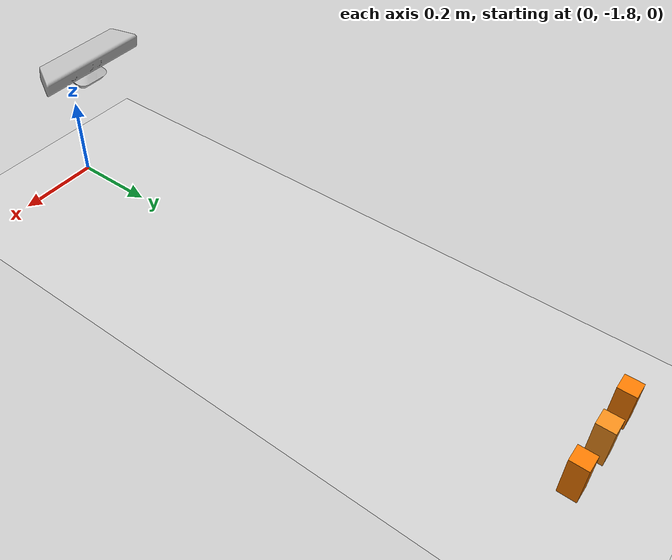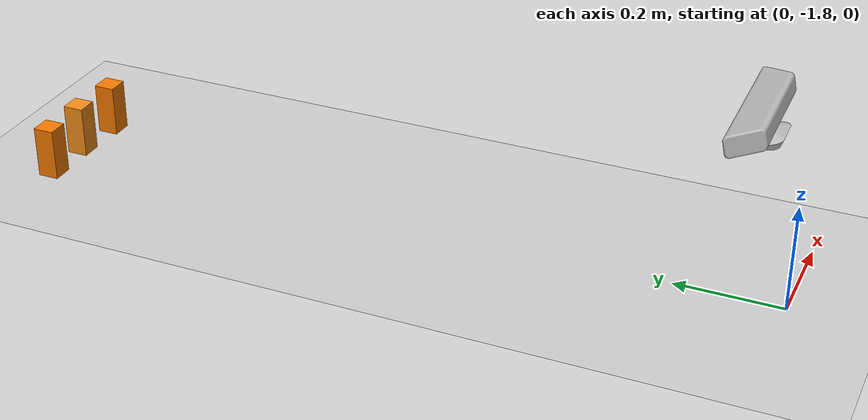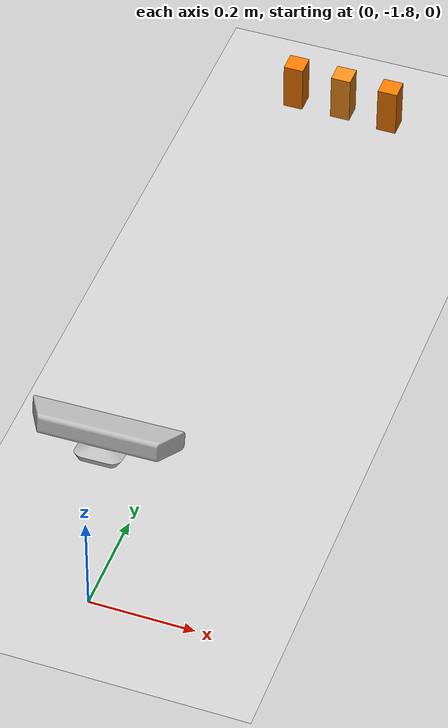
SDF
<sdf version="1.6">
 <world name="default">
  <light name="sun" type="directional">
   <pose>0 0 10 0 -0 0</pose>
   <diffuse>0.8 0.8 0.8 1</diffuse>
   <specular>0.2 0.2 0.2 1</specular>
   <attenuation>
    <range>1000</range>
    <constant>0.9</constant>
    <linear>0.01</linear>
    <quadratic>0.001</quadratic>
   </attenuation>
   <direction>-0.5 0.1 -0.9</direction>
  </light>
  <model name="ground_plane">
   <static>1</static>
   <link name="link">
    <collision name="collision">
     <geometry><plane><normal>0 0 1</normal><size>800 800</size></plane></geometry>
     <surface>
      <contact><collide_bitmask>65535</collide_bitmask></contact>
      <friction><ode><mu>100</mu><mu2>50</mu2></ode></friction>
     </surface>
    </collision>
    <visual name="visual">
     <cast_shadows>0</cast_shadows>
     <geometry><plane><normal>0 0 1</normal><size>100 100</size></plane></geometry>
     <material>
      <script><uri>file://media/materials/scripts/gazebo.material</uri><name>Gazebo/Grey</name></script>
     </material>
    </visual>
   </link>
  </model>
  <gravity>0 0 -9.8</gravity>
  <magnetic_field>6e-06 2.3e-05 -4.2e-05</magnetic_field>
  <atmosphere type="adiabatic"/>
  <physics name="default_physics" default="0" type="ode">
   <max_step_size>0.001</max_step_size>
   <real_time_factor>1</real_time_factor>
   <real_time_update_rate>1000</real_time_update_rate>
  </physics>
  <scene><ambient>0.4 0.4 0.4 1</ambient><background>0.7 0.7 0.7 1</background><shadows>1</shadows></scene>
  <spherical_coordinates>
   <surface_model>EARTH_WGS84</surface_model>
   <latitude_deg>0</latitude_deg>
   <longitude_deg>0</longitude_deg>
   <elevation>0</elevation>
   <heading_deg>0</heading_deg>
  </spherical_coordinates>
  <model name="unit_box_clone">
   <link name="link">
    <inertial>
     <mass>0.187942</mass>
     <inertia>
      <ixx>0.00018166</ixx>
      <ixy>0</ixy>
      <ixz>0</ixz>
      <iyy>0.00018167</iyy>
      <iyz>0</iyz>
      <izz>5.01e-05</izz>
     </inertia>
     <pose>0 0 -0.05 0 -0 0</pose>
    </inertial>
    <visual name="visual">
     <geometry><box><size>0.039996 0.039992 0.099999</size></box></geometry>
     <material>
      <script><name>Gazebo/Grey</name><uri>file://media/materials/scripts/gazebo.material</uri></script>
      <shader type="pixel"><normal_map>__default__</normal_map></shader>
      <ambient>0.961 0.475 0 1</ambient>
      <diffuse>0.961 0.475 0 1</diffuse>
      <specular>0.961 0.475 0 1</specular>
      <emissive>0.961 0.475 0 1</emissive>
     </material>
     <pose>0 0 -0.05 0 -0 0</pose>
    </visual>
    <collision name="collision">
     <pose>0 0 -0.05 0 -0 0</pose>
     <geometry><box><size>0.039996 0.039992 0.099999</size></box></geometry>
     <surface>
      <friction>
       <ode><mu>1</mu><mu2>1</mu2><fdir1>0 0 0</fdir1><slip1>0</slip1><slip2>0</slip2></ode>
       <torsional>
        <coefficient>1</coefficient>
        <patch_radius>0</patch_radius>
        <surface_radius>0</surface_radius>
        <use_patch_radius>1</use_patch_radius>
        <ode><slip>0</slip></ode>
       </torsional>
      </friction>
      <bounce><restitution_coefficient>0</restitution_coefficient><threshold>1e+06</threshold></bounce>
      <contact>
       <collide_without_contact>0</collide_without_contact>
       <collide_without_contact_bitmask>1</collide_without_contact_bitmask>
       <collide_bitmask>1</collide_bitmask>
       <ode>
        <soft_cfm>0</soft_cfm>
        <soft_erp>0.2</soft_erp>
        <kp>1e+13</kp>
        <kd>1</kd>
        <max_vel>0.01</max_vel>
        <min_depth>0</min_depth>
       </ode>
       <bullet>
        <split_impulse>1</split_impulse>
        <split_impulse_penetration_threshold>-0.01</split_impulse_penetration_threshold>
        <soft_cfm>0</soft_cfm>
        <soft_erp>0.2</soft_erp>
        <kp>1e+13</kp>
        <kd>1</kd>
       </bullet>
      </contact>
     </surface>
    </collision>
   </link>
   <static>0</static>
   <pose>0.099999 -0.406482 0.099999 2.7e-05 -1e-06 -2e-05</pose>
  </model>
  <model name="unit_box_clone_0">
   <link name="link">
    <inertial>
     <mass>0.187942</mass>
     <inertia>
      <ixx>0.00018166</ixx>
      <ixy>0</ixy>
      <ixz>0</ixz>
      <iyy>0.00018167</iyy>
      <iyz>0</iyz>
      <izz>5.01e-05</izz>
     </inertia>
     <pose>0 0 -0.05 0 -0 0</pose>
    </inertial>
    <visual name="visual">
     <geometry><box><size>0.039996 0.039992 0.099999</size></box></geometry>
     <material>
      <script><name>Gazebo/Orange</name><uri>file://media/materials/scripts/gazebo.material</uri></script>
      <shader type="pixel"><normal_map>__default__</normal_map></shader>
      <ambient>0.961 0.475 0 1</ambient>
      <diffuse>0.961 0.475 0 1</diffuse>
      <specular>0.961 0.475 0 1</specular>
      <emissive>0.961 0.475 0 1</emissive>
     </material>
     <pose>0 0 -0.05 0 -0 0</pose>
    </visual>
    <collision name="collision">
     <pose>0 0 -0.05 0 -0 0</pose>
     <geometry><box><size>0.039996 0.039992 0.099999</size></box></geometry>
     <surface>
      <friction>
       <ode><mu>1</mu><mu2>1</mu2><fdir1>0 0 0</fdir1><slip1>0</slip1><slip2>0</slip2></ode>
       <torsional>
        <coefficient>1</coefficient>
        <patch_radius>0</patch_radius>
        <surface_radius>0</surface_radius>
        <use_patch_radius>1</use_patch_radius>
        <ode><slip>0</slip></ode>
       </torsional>
      </friction>
      <bounce><restitution_coefficient>0</restitution_coefficient><threshold>1e+06</threshold></bounce>
      <contact>
       <collide_without_contact>0</collide_without_contact>
       <collide_without_contact_bitmask>1</collide_without_contact_bitmask>
       <collide_bitmask>1</collide_bitmask>
       <ode>
        <soft_cfm>0</soft_cfm>
        <soft_erp>0.2</soft_erp>
        <kp>1e+13</kp>
        <kd>1</kd>
        <max_vel>0.01</max_vel>
        <min_depth>0</min_depth>
       </ode>
       <bullet>
        <split_impulse>1</split_impulse>
        <split_impulse_penetration_threshold>-0.01</split_impulse_penetration_threshold>
        <soft_cfm>0</soft_cfm>
        <soft_erp>0.2</soft_erp>
        <kp>1e+13</kp>
        <kd>1</kd>
       </bullet>
      </contact>
     </surface>
    </collision>
   </link>
   <static>0</static>
   <pose>-4e-06 -0.400004 0.1 2.7e-05 6e-06 0.000106</pose>
  </model>
  <model name="unit_box">
   <link name="link">
    <inertial>
     <mass>0.187998</mass>
     <inertia>
      <ixx>0.00018173</ixx>
      <ixy>0</ixy>
      <ixz>0</ixz>
      <iyy>0.00018173</iyy>
      <iyz>0</iyz>
      <izz>5.013e-05</izz>
     </inertia>
     <pose>0 0 -0.05 0 -0 0</pose>
    </inertial>
    <visual name="visual">
     <geometry><box><size>0.04 0.04 0.099999</size></box></geometry>
     <material>
      <script><name>Gazebo/Grey</name><uri>file://media/materials/scripts/gazebo.material</uri></script>
      <shader type="pixel"><normal_map>__default__</normal_map></shader>
      <ambient>0.961 0.475 0 1</ambient>
      <diffuse>0.961 0.475 0 1</diffuse>
      <specular>0.961 0.475 0 1</specular>
      <emissive>0.961 0.475 0 1</emissive>
     </material>
     <pose>0 0 -0.05 0 -0 0</pose>
    </visual>
    <collision name="collision">
     <pose>0 0 -0.05 0 -0 0</pose>
     <geometry><box><size>0.04 0.04 0.099999</size></box></geometry>
     <surface>
      <friction>
       <ode><mu>200</mu><mu2>200</mu2><fdir1>0 0 0</fdir1><slip1>0</slip1><slip2>0</slip2></ode>
       <torsional>
        <coefficient>1</coefficient>
        <patch_radius>0</patch_radius>
        <surface_radius>0</surface_radius>
        <use_patch_radius>1</use_patch_radius>
        <ode><slip>0</slip></ode>
       </torsional>
      </friction>
      <bounce><restitution_coefficient>0</restitution_coefficient><threshold>1e+06</threshold></bounce>
      <contact>
       <collide_without_contact>0</collide_without_contact>
       <collide_without_contact_bitmask>1</collide_without_contact_bitmask>
       <collide_bitmask>1</collide_bitmask>
       <ode>
        <soft_cfm>0</soft_cfm>
        <soft_erp>0.2</soft_erp>
        <kp>1e+13</kp>
        <kd>1</kd>
        <max_vel>0.01</max_vel>
        <min_depth>0</min_depth>
       </ode>
       <bullet>
        <split_impulse>1</split_impulse>
        <split_impulse_penetration_threshold>-0.01</split_impulse_penetration_threshold>
        <soft_cfm>0</soft_cfm>
        <soft_erp>0.2</soft_erp>
        <kp>1e+13</kp>
        <kd>1</kd>
       </bullet>
      </contact>
     </surface>
    </collision>
   </link>
   <static>0</static>
   <pose>-0.099994 -0.399997 0.1 -3e-06 3.6e-05 -0.000147</pose>
  </model>
  <model name="kinect">
   <link name="link">
    <inertial>
     <mass>0.1</mass>
     <inertia><ixx>1</ixx><ixy>0</ixy><ixz>0</ixz><iyy>1</iyy><iyz>0</iyz><izz>1</izz></inertia>
    </inertial>
    <sensor name="camera" type="depth">
     <update_rate>30</update_rate>
     <camera name="__default__">
      <horizontal_fov>1.0472</horizontal_fov>
      <image><width>640</width><height>480</height><format>R8G8B8</format></image>
      <clip><near>0.05</near><far>3</far></clip>
     </camera>
     <plugin name="camera_plugin" filename="libgazebo_ros_openni_kinect.so">
      <baseline>0.2</baseline>
      <alwaysOn>1</alwaysOn>
      <updateRate>0.0</updateRate>
      <cameraName>kinect</cameraName>
      <imageTopicName>/camera/color/image_raw</imageTopicName>
      <cameraInfoTopicName>/camera/color/camera_info</cameraInfoTopicName>
      <depthImageTopicName>/camera/depth/image_raw</depthImageTopicName>
      <depthImageCameraInfoTopicName>/camera/depth/camera_info</depthImageCameraInfoTopicName>
      <pointCloudTopicName>/camera/depth/points</pointCloudTopicName>
      <frameName>kinect_link</frameName>
      <pointCloudCutoff>0.5</pointCloudCutoff>
      <pointCloudCutoffMax>3.0</pointCloudCutoffMax>
      <distortionK1>0</distortionK1>
      <distortionK2>0</distortionK2>
      <distortionK3>0</distortionK3>
      <distortionT1>0</distortionT1>
      <distortionT2>0</distortionT2>
      <CxPrime>0</CxPrime>
      <Cx>0</Cx>
      <Cy>0</Cy>
      <focalLength>0</focalLength>
      <hackBaseline>0</hackBaseline>
     </plugin>
    </sensor>
    <visual name="visual">
     <geometry><mesh><uri>model://kinect/meshes/kinect.dae</uri></mesh></geometry>
     <material><shader type="pixel"/></material>
    </visual>
    <collision name="collision">
     <geometry><box><size>0.073 0.276 0.072</size></box></geometry>
     <surface>
      <friction>
       <ode><mu>1</mu><mu2>1</mu2><fdir1>0 0 0</fdir1><slip1>0</slip1><slip2>0</slip2></ode>
       <torsional>
        <coefficient>1</coefficient>
        <patch_radius>0</patch_radius>
        <surface_radius>0</surface_radius>
        <use_patch_radius>1</use_patch_radius>
        <ode><slip>0</slip></ode>
       </torsional>
      </friction>
      <bounce><restitution_coefficient>0</restitution_coefficient><threshold>1e+06</threshold></bounce>
      <contact>
       <collide_without_contact>0</collide_without_contact>
       <collide_without_contact_bitmask>1</collide_without_contact_bitmask>
       <collide_bitmask>1</collide_bitmask>
       <ode>
        <soft_cfm>0</soft_cfm>
        <soft_erp>0.2</soft_erp>
        <kp>1e+13</kp>
        <kd>1</kd>
        <max_vel>0.01</max_vel>
        <min_depth>0</min_depth>
       </ode>
       <bullet>
        <split_impulse>1</split_impulse>
        <split_impulse_penetration_threshold>-0.01</split_impulse_penetration_threshold>
        <soft_cfm>0</soft_cfm>
        <soft_erp>0.2</soft_erp>
        <kp>1e+13</kp>
        <kd>1</kd>
       </bullet>
      </contact>
     </surface>
    </collision>
   </link>
   <static>1</static>
   <pose>0.005007 -1.69095 0.352311 0 0.20755 1.5892</pose>
  </model>
 </world>
</sdf>
